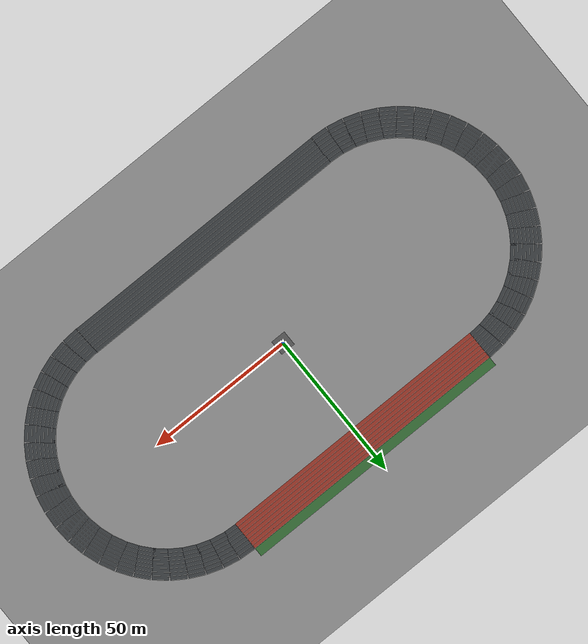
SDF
<?xml version="1.0" encoding="UTF-8"?>
<sdf version="1.9">
  <world name="truck_mission_px4_track">
    <physics type="ode">
      <max_step_size>0.004</max_step_size>
      <real_time_factor>1.0</real_time_factor>
      <real_time_update_rate>250</real_time_update_rate>
    </physics>
    <gravity>0 0 -9.8</gravity>
    <magnetic_field>6e-06 2.3e-05 -4.2e-05</magnetic_field>
    <atmosphere type="adiabatic"/>
    <scene>
      <grid>false</grid>
      <ambient>0.4 0.4 0.4 1</ambient>
      <background>0.7 0.7 0.7 1</background>
      <shadows>true</shadows>
    </scene>
    <model name="ground_plane">
      <static>true</static>
      <link name="link">
        <collision name="collision">
          <geometry>
            <plane>
              <normal>0 0 1</normal>
              <size>1 1</size>
            </plane>
          </geometry>
          <surface>
            <friction>
              <ode/>
            </friction>
            <bounce/>
            <contact/>
          </surface>
        </collision>
        <visual name="visual">
          <geometry>
            <plane>
              <normal>0 0 1</normal>
              <size>500 500</size>
            </plane>
          </geometry>
          <material>
            <ambient>0.5 0.5 0.5 1</ambient>
            <diffuse>0.5 0.5 0.5 1</diffuse>
            <specular>0.5 0.5 0.5 1</specular>
          </material>
        </visual>
        <pose>0 0 0 0 -0 0</pose>
        <inertial>
          <pose>0 0 0 0 -0 0</pose>
          <mass>1</mass>
          <inertia>
            <ixx>1</ixx>
            <ixy>0</ixy>
            <ixz>0</ixz>
            <iyy>1</iyy>
            <iyz>0</iyz>
            <izz>1</izz>
          </inertia>
        </inertial>
        <enable_wind>false</enable_wind>
      </link>
      <pose>0 0 0 0 -0 0</pose>
      <self_collide>false</self_collide>
    </model>
    <include>
      <uri>model://running_track</uri>
    </include>
    <include>
      <uri>model://moving_platform_track</uri>
    </include>
    <light name="sunUTC" type="directional">
      <pose>0 0 500 0 -0 0</pose>
      <cast_shadows>true</cast_shadows>
      <intensity>1</intensity>
      <direction>0.001 0.625 -0.78</direction>
      <diffuse>0.904 0.904 0.904 1</diffuse>
      <specular>0.271 0.271 0.271 1</specular>
      <attenuation>
        <range>2000</range>
        <linear>0</linear>
        <constant>1</constant>
        <quadratic>0</quadratic>
      </attenuation>
      <spot>
        <inner_angle>0</inner_angle>
        <outer_angle>0</outer_angle>
        <falloff>0</falloff>
      </spot>
    </light>
    <spherical_coordinates>
      <surface_model>EARTH_WGS84</surface_model>
      <world_frame_orientation>ENU</world_frame_orientation>
      <latitude_deg>47.397971057728974</latitude_deg>
      <longitude_deg> 8.546163739800146</longitude_deg>
      <elevation>0</elevation>
    </spherical_coordinates>
  </world>
</sdf>

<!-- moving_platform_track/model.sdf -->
<sdf version="1.9">
  <model name="flat_platform">
    <link name="platform_link">
      <visual name="body_visual">
        <pose>0 0 -1.0 0 0 0</pose>
        <geometry>
          <box>
            <size>5 5 1.9</size>
          </box>
        </geometry>
        <material>
          <ambient>0.55 0.32 0.05 1</ambient>
          <diffuse>0.6 0.38 0.08 1</diffuse>
          <specular>0.2 0.2 0.2 1</specular>
        </material>
      </visual>
      <collision name="body_collision">
        <pose>0 0 -1.0 0 0 0</pose>
        <geometry>
          <box>
            <size>5 5 1.9</size>
          </box>
        </geometry>
      </collision>
      <visual name="platform_visual">
        <geometry>
          <box>
            <size>5 5 0.1</size>
          </box>
        </geometry>
        <material>
          <ambient>0.3 0.3 0.3 1</ambient>
          <diffuse>0.3 0.3 0.3 1</diffuse>
          <specular>0.1 0.1 0.1 1</specular>
        </material>
      </visual>
      <!-- Same ArUco decal as moving_platform_aruco (see that model for why
           it's a second visual on this link rather than a separate model). -->
      <visual name="aruco_visual">
        <pose>0 0 0.051 0 0 0</pose>
        <geometry>
          <plane>
            <normal>0 0 1</normal>
            <size>1.0 1.0</size>
          </plane>
        </geometry>
        <material>
          <diffuse>1 1 1 1</diffuse>
          <specular>0.4 0.4 0.4 1</specular>
          <pbr>
            <metal>
              <albedo_map>model://moving_platform_track/arucotag.png</albedo_map>
            </metal>
          </pbr>
        </material>
      </visual>
      <visual name="camera_housing">
        <pose>4.5 0 -1.15 0 0.61 0</pose>
        <geometry>
          <box>
            <size>0.08 0.08 0.06</size>
          </box>
        </geometry>
        <material>
          <ambient>0.1 0.1 0.1 1</ambient>
          <diffuse>0.1 0.1 0.1 1</diffuse>
        </material>
      </visual>
      <sensor name="front_camera" type="camera">
        <gz_frame_id>flat_platform/front_camera</gz_frame_id>
        <pose>4.5 0 -1.15 0 0.61 0</pose>
        <always_on>1</always_on>
        <update_rate>30</update_rate>
        <visualize>true</visualize>
        <topic>front_camera/image</topic>
        <camera>
          <horizontal_fov>1.60</horizontal_fov>
          <image>
            <width>640</width>
            <height>480</height>
            <format>R8G8B8</format>
          </image>
          <clip>
            <near>0.05</near>
            <far>1000</far>
          </clip>
          <optical_frame_id>flat_platform/front_camera_optical</optical_frame_id>
        </camera>
      </sensor>
      <collision name="platform_collision">
        <geometry>
          <box>
            <size>5 5 0.1</size>
          </box>
        </geometry>
      </collision>
      <pose>0 0 2 0 0 0</pose>
      <inertial>
          <mass>10000</mass>
          <inertia>
              <ixx>10000</ixx>
              <iyy>10000</iyy>
              <izz>10000</izz>
          </inertia>
      </inertial>
      <sensor name="navsat_sensor" type="navsat">
        <always_on>1</always_on>
        <update_rate>30</update_rate>
      </sensor>
    </link>
    <!-- Driven by an external cmd_vel (track_follower_node), not
         MovingPlatformController (see moving_platform_aruco for that one). -->
    <plugin filename="gz-sim-velocity-control-system"
            name="gz::sim::systems::VelocityControl">
      <topic>/model/flat_platform/cmd_vel</topic>
    </plugin>
  </model>
</sdf>
